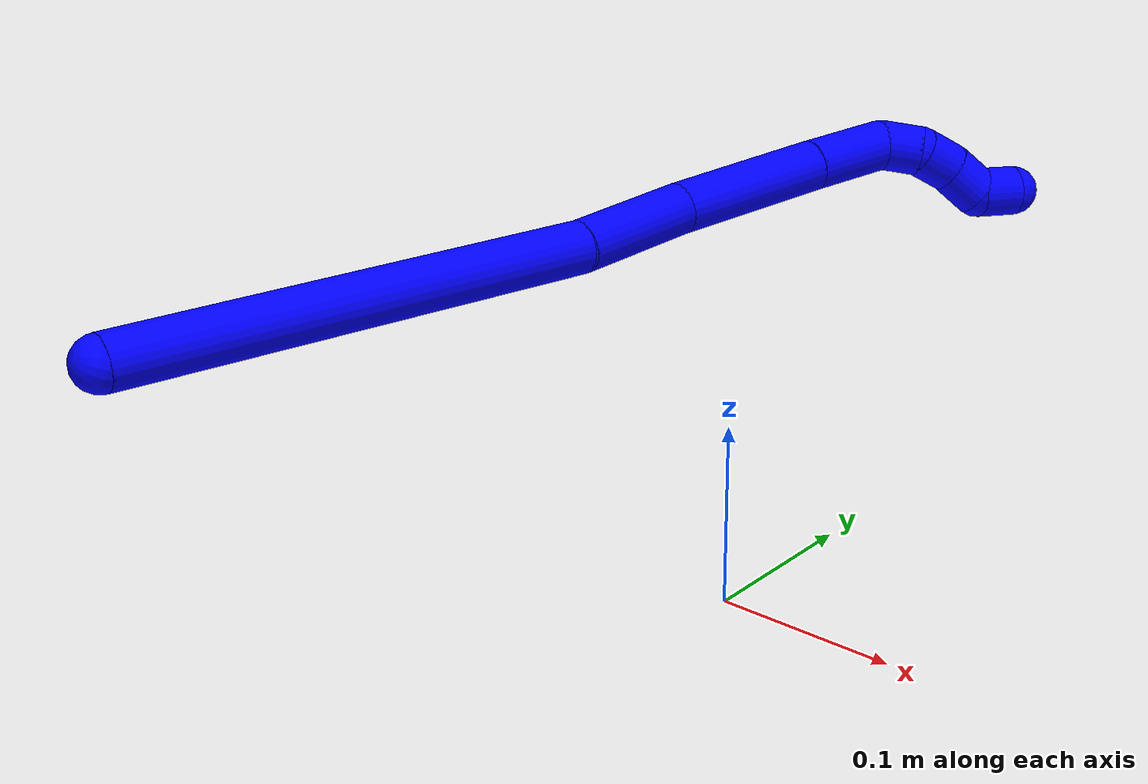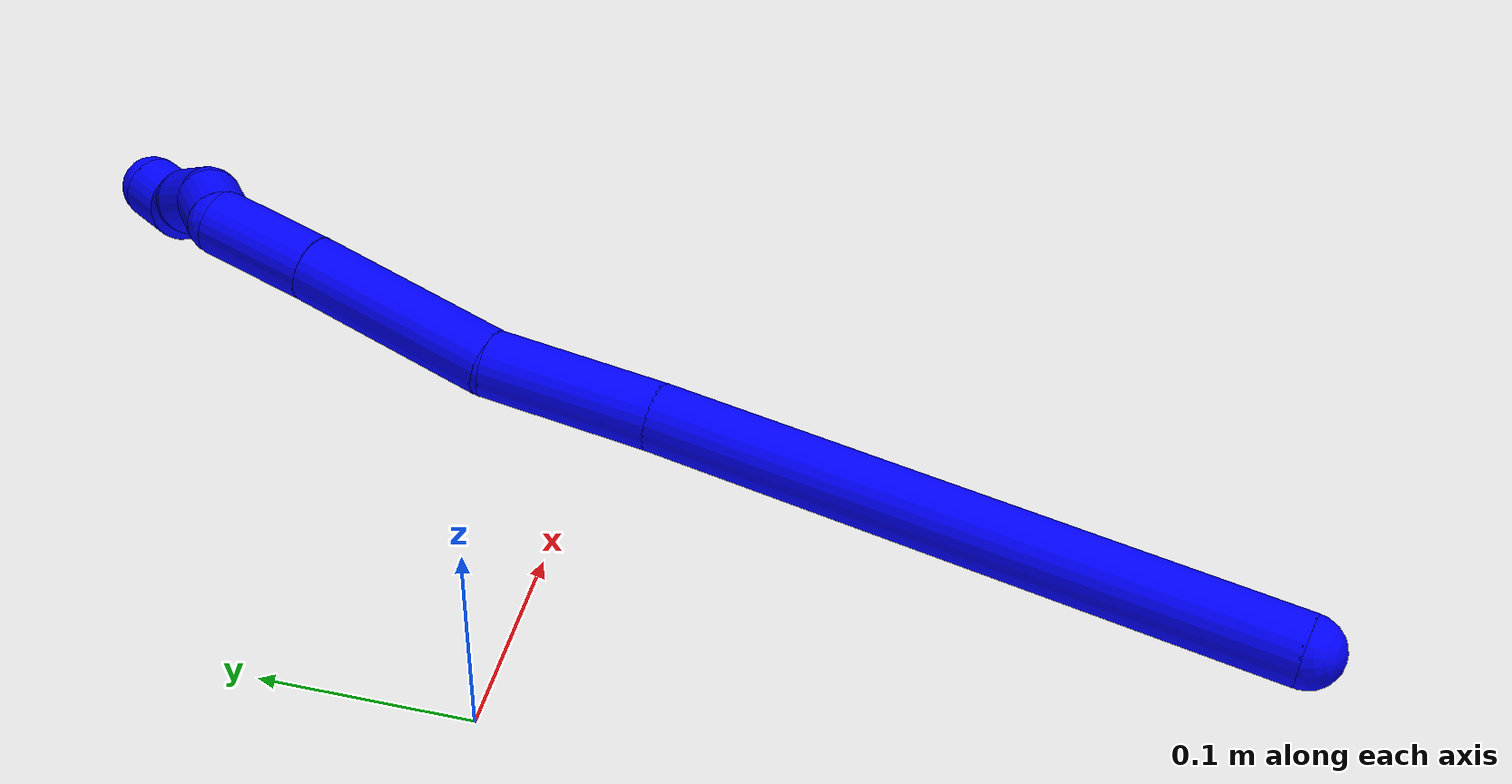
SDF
<sdf version="1.7">
 <world name="default">
  <plugin name="TubeGeneratorPlugin" filename="libtube_generator_plugin.so"/>
  <model name="photoneo_s_sensor">
   <static>1</static>
   <pose>0 0 2 1.57079 1.57079 3.14159</pose>
   <link name="link">
    <inertial><mass>0.1</mass></inertial>
    <sensor name="sensor" type="depth">
     <update_rate>30</update_rate>
     <camera>
      <horizontal_fov>1.22</horizontal_fov>
      <image><width>1920</width><height>1200</height><format>B8G8R8</format></image>
      <clip><near>0.1</near><far>4</far></clip>
      <depth_camera><output>points</output></depth_camera>
     </camera>
     <plugin name="camera_plugin" filename="libgazebo_ros_depth_camera.so">
      <baseline>0.2</baseline>
      <alwaysOn>1</alwaysOn>
      <updateRate>0.0</updateRate>
      <cameraName>camera_ir</cameraName>
      <imageTopicName>/camera/color/image_raw</imageTopicName>
      <cameraInfoTopicName>/camera/color/camera_info</cameraInfoTopicName>
      <depthImageTopicName>/camera/depth/image_raw</depthImageTopicName>
      <depthImageCameraInfoTopicName>/camera/depth/camera_info</depthImageCameraInfoTopicName>
      <pointCloudTopicName>/camera/depth/points</pointCloudTopicName>
      <frameName>fr_optical</frameName>
      <pointCloudCutoff>0.1</pointCloudCutoff>
      <pointCloudCutoffMax>2.0</pointCloudCutoffMax>
      <distortionK1>0</distortionK1>
      <distortionK2>0</distortionK2>
      <distortionK3>0</distortionK3>
      <distortionT1>0</distortionT1>
      <distortionT2>0</distortionT2>
      <CxPrime>0</CxPrime>
      <Cx>0</Cx>
      <Cy>0</Cy>
      <focalLength>0</focalLength>
      <hackBaseline>0</hackBaseline>
     </plugin>
    </sensor>
   </link>
  </model>
  <gravity>0 0 -9.8</gravity>
  <magnetic_field>6e-06 2.3e-05 -4.2e-05</magnetic_field>
  <atmosphere type="adiabatic"/>
  <physics name="default_physics" default="0" type="ode">
   <max_step_size>0.003</max_step_size>
   <real_time_factor>1</real_time_factor>
   <real_time_update_rate>1000</real_time_update_rate>
   <max_contacts>10000</max_contacts>
   <ode>
    <solver>
     <type>quick</type>
     <iters>100</iters>
     <sor>1.3</sor>
     <use_dynamic_moi_rescaling>0</use_dynamic_moi_rescaling>
    </solver>
    <constraints>
     <contact_max_correcting_vel>0</contact_max_correcting_vel>
     <contact_surface_layer>0.001</contact_surface_layer>
     <cfm>0</cfm>
     <erp>0.2</erp>
    </constraints>
   </ode>
  </physics>
  <scene><ambient>0.4 0.4 0.4 1</ambient><background>0.7 0.7 0.7 1</background><shadows>0</shadows></scene>
  <audio><device>default</device></audio>
  <spherical_coordinates>
   <surface_model>EARTH_WGS84</surface_model>
   <latitude_deg>0</latitude_deg>
   <longitude_deg>0</longitude_deg>
   <elevation>0</elevation>
   <heading_deg>0</heading_deg>
  </spherical_coordinates>
  <model name="bin">
   <static>1</static>
   <link name="bottom">
    <collision name="collision-bottom">
     <pose>0 0 -0.01 0 -0 0</pose>
     <geometry><box><size>0.8 0.6 0.02</size></box></geometry>
     <surface>
      <friction><ode><mu>100</mu><mu2>100</mu2></ode></friction>
      <contact><collide_bitmask>65535</collide_bitmask></contact>
     </surface>
    </collision>
   </link>
   <link name="west_wall">
    <collision name="collision-west_wall">
     <pose>-0.41 0 0.1 0 -0 0</pose>
     <geometry><box><size>0.02 0.6 0.2</size></box></geometry>
     <surface>
      <friction><ode><mu>100</mu><mu2>100</mu2></ode></friction>
      <contact><collide_bitmask>65535</collide_bitmask></contact>
     </surface>
    </collision>
   </link>
   <link name="east_wall">
    <collision name="collision-east_wall">
     <pose>0.41 0 0.1 0 -0 0</pose>
     <geometry><box><size>0.02 0.6 0.2</size></box></geometry>
     <surface>
      <friction><ode><mu>100</mu><mu2>100</mu2></ode></friction>
      <contact><collide_bitmask>65535</collide_bitmask></contact>
     </surface>
    </collision>
   </link>
   <link name="south_wall">
    <collision name="collision-south_wall">
     <pose>0 -0.31 0.1 0 -0 0</pose>
     <geometry><box><size>0.8 0.02 0.2</size></box></geometry>
     <surface>
      <friction><ode><mu>100</mu><mu2>100</mu2></ode></friction>
      <contact><collide_bitmask>65535</collide_bitmask></contact>
     </surface>
    </collision>
   </link>
   <link name="north_wall">
    <collision name="collision-north_wall">
     <pose>0 0.31 0.1 0 -0 0</pose>
     <geometry><box><size>0.8 0.02 0.2</size></box></geometry>
     <surface>
      <friction><ode><mu>100</mu><mu2>100</mu2></ode></friction>
      <contact><collide_bitmask>65535</collide_bitmask></contact>
     </surface>
    </collision>
   </link>
  </model>
  <model name="1">
   <static>0</static>
   <link name="1">
    <collision name="collision-cylinder-e_1_1_4">
     <pose>0.000885 0.047016 -0.105515 -2.72241 0.007662 -0.036018</pose>
     <geometry><cylinder><radius>0.0125</radius><length>0.23104</length></cylinder></geometry>
     <surface>
      <friction><ode><mu>1.16</mu><mu2>1.16</mu2><slip1>0</slip1><slip2>0</slip2></ode></friction>
      <contact><ode><kp>1e+06</kp><kd>1</kd><max_vel>0</max_vel><min_depth>0.001</min_depth></ode></contact>
     </surface>
    </collision>
    <visual name="visual-cylinder-e_1_1_4">
     <pose>0.000885 0.047016 -0.105515 -2.72241 0.007662 -0.036018</pose>
     <geometry><cylinder><radius>0.0125</radius><length>0.23104</length></cylinder></geometry>
     <material><ambient>0 0 1 1</ambient></material>
    </visual>
    <collision name="collision-cylinder-e_2_4_5">
     <pose>-0.000439 0.11004 -0.23864 -2.61617 -0.069124 0.255733</pose>
     <geometry><cylinder><radius>0.0125</radius><length>0.063981</length></cylinder></geometry>
     <surface>
      <friction><ode><mu>1.16</mu><mu2>1.16</mu2><slip1>0</slip1><slip2>0</slip2></ode></friction>
      <contact><ode><kp>1e+06</kp><kd>1</kd><max_vel>0</max_vel><min_depth>0.001</min_depth></ode></contact>
     </surface>
    </collision>
    <visual name="visual-cylinder-e_2_4_5">
     <pose>-0.000439 0.11004 -0.23864 -2.61617 -0.069124 0.255733</pose>
     <geometry><cylinder><radius>0.0125</radius><length>0.063981</length></cylinder></geometry>
     <material><ambient>0 0 1 1</ambient></material>
    </visual>
    <collision name="collision-cylinder-e_3_5_6">
     <pose>0.00227 0.144667 -0.301214 -2.65228 0.123537 -0.485679</pose>
     <geometry><cylinder><radius>0.0125</radius><length>0.079836</length></cylinder></geometry>
     <surface>
      <friction><ode><mu>1.16</mu><mu2>1.16</mu2><slip1>0</slip1><slip2>0</slip2></ode></friction>
      <contact><ode><kp>1e+06</kp><kd>1</kd><max_vel>0</max_vel><min_depth>0.001</min_depth></ode></contact>
     </surface>
    </collision>
    <visual name="visual-cylinder-e_3_5_6">
     <pose>0.00227 0.144667 -0.301214 -2.65228 0.123537 -0.485679</pose>
     <geometry><cylinder><radius>0.0125</radius><length>0.079836</length></cylinder></geometry>
     <material><ambient>0 0 1 1</ambient></material>
    </visual>
    <collision name="collision-cylinder-e_4_6_7">
     <pose>0.009504 0.173257 -0.355881 -2.67306 0.104487 -0.431407</pose>
     <geometry><cylinder><radius>0.0125</radius><length>0.044403</length></cylinder></geometry>
     <surface>
      <friction><ode><mu>1.16</mu><mu2>1.16</mu2><slip1>0</slip1><slip2>0</slip2></ode></friction>
      <contact><ode><kp>1e+06</kp><kd>1</kd><max_vel>0</max_vel><min_depth>0.001</min_depth></ode></contact>
     </surface>
    </collision>
    <visual name="visual-cylinder-e_4_6_7">
     <pose>0.009504 0.173257 -0.355881 -2.67306 0.104487 -0.431407</pose>
     <geometry><cylinder><radius>0.0125</radius><length>0.044403</length></cylinder></geometry>
     <material><ambient>0 0 1 1</ambient></material>
    </visual>
    <collision name="collision-cylinder-e_5_7_8">
     <pose>0.017199 0.182752 -0.384065 3.08546 0.564351 2.94852</pose>
     <geometry><cylinder><radius>0.0125</radius><length>0.020112</length></cylinder></geometry>
     <surface>
      <friction><ode><mu>1.16</mu><mu2>1.16</mu2><slip1>0</slip1><slip2>0</slip2></ode></friction>
      <contact><ode><kp>1e+06</kp><kd>1</kd><max_vel>0</max_vel><min_depth>0.001</min_depth></ode></contact>
     </surface>
    </collision>
    <visual name="visual-cylinder-e_5_7_8">
     <pose>0.017199 0.182752 -0.384065 3.08546 0.564351 2.94852</pose>
     <geometry><cylinder><radius>0.0125</radius><length>0.020112</length></cylinder></geometry>
     <material><ambient>0 0 1 1</ambient></material>
    </visual>
    <collision name="collision-cylinder-e_6_8_9">
     <pose>0.023417 0.180183 -0.402374 2.93178 0.083394 0.754503</pose>
     <geometry><cylinder><radius>0.0125</radius><length>0.020162</length></cylinder></geometry>
     <surface>
      <friction><ode><mu>1.16</mu><mu2>1.16</mu2><slip1>0</slip1><slip2>0</slip2></ode></friction>
      <contact><ode><kp>1e+06</kp><kd>1</kd><max_vel>0</max_vel><min_depth>0.001</min_depth></ode></contact>
     </surface>
    </collision>
    <visual name="visual-cylinder-e_6_8_9">
     <pose>0.023417 0.180183 -0.402374 2.93178 0.083394 0.754503</pose>
     <geometry><cylinder><radius>0.0125</radius><length>0.020162</length></cylinder></geometry>
     <material><ambient>0 0 1 1</ambient></material>
    </visual>
    <collision name="collision-cylinder-e_7_9_10">
     <pose>0.025817 0.173352 -0.421086 2.65179 0.153699 0.597751</pose>
     <geometry><cylinder><radius>0.0125</radius><length>0.020382</length></cylinder></geometry>
     <surface>
      <friction><ode><mu>1.16</mu><mu2>1.16</mu2><slip1>0</slip1><slip2>0</slip2></ode></friction>
      <contact><ode><kp>1e+06</kp><kd>1</kd><max_vel>0</max_vel><min_depth>0.001</min_depth></ode></contact>
     </surface>
    </collision>
    <visual name="visual-cylinder-e_7_9_10">
     <pose>0.025817 0.173352 -0.421086 2.65179 0.153699 0.597751</pose>
     <geometry><cylinder><radius>0.0125</radius><length>0.020382</length></cylinder></geometry>
     <material><ambient>0 0 1 1</ambient></material>
    </visual>
    <collision name="collision-cylinder-e_8_10_2">
     <pose>0.030428 0.170956 -0.439249 -2.89428 0.308693 -1.79349</pose>
     <geometry><cylinder><radius>0.0125</radius><length>0.020084</length></cylinder></geometry>
     <surface>
      <friction><ode><mu>1.16</mu><mu2>1.16</mu2><slip1>0</slip1><slip2>0</slip2></ode></friction>
      <contact><ode><kp>1e+06</kp><kd>1</kd><max_vel>0</max_vel><min_depth>0.001</min_depth></ode></contact>
     </surface>
    </collision>
    <visual name="visual-cylinder-e_8_10_2">
     <pose>0.030428 0.170956 -0.439249 -2.89428 0.308693 -1.79349</pose>
     <geometry><cylinder><radius>0.0125</radius><length>0.020084</length></cylinder></geometry>
     <material><ambient>0 0 1 1</ambient></material>
    </visual>
    <collision name="collision-sphere-2">
     <pose>0.033479 0.173299 -0.448526 0 -0 0</pose>
     <geometry><sphere><radius>0.0125</radius></sphere></geometry>
     <surface>
      <friction><ode><mu>1.16</mu><mu2>1.16</mu2><slip1>0</slip1><slip2>0</slip2></ode></friction>
      <contact><ode><kp>1e+06</kp><kd>1</kd><max_vel>0</max_vel><min_depth>0.001</min_depth></ode></contact>
     </surface>
    </collision>
    <visual name="visual-sphere-2">
     <pose>0.033479 0.173299 -0.448526 0 -0 0</pose>
     <geometry><sphere><radius>0.0125</radius></sphere></geometry>
     <material><ambient>0 0 1 1</ambient></material>
    </visual>
    <collision name="collision-sphere-10">
     <pose>0.027377 0.168614 -0.429973 0 -0 0</pose>
     <geometry><sphere><radius>0.0125</radius></sphere></geometry>
     <surface>
      <friction><ode><mu>1.16</mu><mu2>1.16</mu2><slip1>0</slip1><slip2>0</slip2></ode></friction>
      <contact><ode><kp>1e+06</kp><kd>1</kd><max_vel>0</max_vel><min_depth>0.001</min_depth></ode></contact>
     </surface>
    </collision>
    <visual name="visual-sphere-10">
     <pose>0.027377 0.168614 -0.429973 0 -0 0</pose>
     <geometry><sphere><radius>0.0125</radius></sphere></geometry>
     <material><ambient>0 0 1 1</ambient></material>
    </visual>
    <collision name="collision-sphere-9">
     <pose>0.024257 0.17809 -0.412199 0 -0 0</pose>
     <geometry><sphere><radius>0.0125</radius></sphere></geometry>
     <surface>
      <friction><ode><mu>1.16</mu><mu2>1.16</mu2><slip1>0</slip1><slip2>0</slip2></ode></friction>
      <contact><ode><kp>1e+06</kp><kd>1</kd><max_vel>0</max_vel><min_depth>0.001</min_depth></ode></contact>
     </surface>
    </collision>
    <visual name="visual-sphere-9">
     <pose>0.024257 0.17809 -0.412199 0 -0 0</pose>
     <geometry><sphere><radius>0.0125</radius></sphere></geometry>
     <material><ambient>0 0 1 1</ambient></material>
    </visual>
    <collision name="collision-sphere-4">
     <pose>0.00177 0.094033 -0.211031 0 -0 0</pose>
     <geometry><sphere><radius>0.0125</radius></sphere></geometry>
     <surface>
      <friction><ode><mu>1.16</mu><mu2>1.16</mu2><slip1>0</slip1><slip2>0</slip2></ode></friction>
      <contact><ode><kp>1e+06</kp><kd>1</kd><max_vel>0</max_vel><min_depth>0.001</min_depth></ode></contact>
     </surface>
    </collision>
    <visual name="visual-sphere-4">
     <pose>0.00177 0.094033 -0.211031 0 -0 0</pose>
     <geometry><sphere><radius>0.0125</radius></sphere></geometry>
     <material><ambient>0 0 1 1</ambient></material>
    </visual>
    <collision name="collision-sphere-1">
     <geometry><sphere><radius>0.0125</radius></sphere></geometry>
     <surface>
      <friction><ode><mu>1.16</mu><mu2>1.16</mu2><slip1>0</slip1><slip2>0</slip2></ode></friction>
      <contact><ode><kp>1e+06</kp><kd>1</kd><max_vel>0</max_vel><min_depth>0.001</min_depth></ode></contact>
     </surface>
    </collision>
    <visual name="visual-sphere-1">
     <geometry><sphere><radius>0.0125</radius></sphere></geometry>
     <material><ambient>0 0 1 1</ambient></material>
    </visual>
    <collision name="collision-sphere-8">
     <pose>0.022577 0.182275 -0.392548 0 -0 0</pose>
     <geometry><sphere><radius>0.0125</radius></sphere></geometry>
     <surface>
      <friction><ode><mu>1.16</mu><mu2>1.16</mu2><slip1>0</slip1><slip2>0</slip2></ode></friction>
      <contact><ode><kp>1e+06</kp><kd>1</kd><max_vel>0</max_vel><min_depth>0.001</min_depth></ode></contact>
     </surface>
    </collision>
    <visual name="visual-sphere-8">
     <pose>0.022577 0.182275 -0.392548 0 -0 0</pose>
     <geometry><sphere><radius>0.0125</radius></sphere></geometry>
     <material><ambient>0 0 1 1</ambient></material>
    </visual>
    <collision name="collision-sphere-5">
     <pose>-0.002649 0.126048 -0.266249 0 -0 0</pose>
     <geometry><sphere><radius>0.0125</radius></sphere></geometry>
     <surface>
      <friction><ode><mu>1.16</mu><mu2>1.16</mu2><slip1>0</slip1><slip2>0</slip2></ode></friction>
      <contact><ode><kp>1e+06</kp><kd>1</kd><max_vel>0</max_vel><min_depth>0.001</min_depth></ode></contact>
     </surface>
    </collision>
    <visual name="visual-sphere-5">
     <pose>-0.002649 0.126048 -0.266249 0 -0 0</pose>
     <geometry><sphere><radius>0.0125</radius></sphere></geometry>
     <material><ambient>0 0 1 1</ambient></material>
    </visual>
    <collision name="collision-sphere-6">
     <pose>0.007189 0.163286 -0.33618 0 -0 0</pose>
     <geometry><sphere><radius>0.0125</radius></sphere></geometry>
     <surface>
      <friction><ode><mu>1.16</mu><mu2>1.16</mu2><slip1>0</slip1><slip2>0</slip2></ode></friction>
      <contact><ode><kp>1e+06</kp><kd>1</kd><max_vel>0</max_vel><min_depth>0.001</min_depth></ode></contact>
     </surface>
    </collision>
    <visual name="visual-sphere-6">
     <pose>0.007189 0.163286 -0.33618 0 -0 0</pose>
     <geometry><sphere><radius>0.0125</radius></sphere></geometry>
     <material><ambient>0 0 1 1</ambient></material>
    </visual>
    <collision name="collision-sphere-7">
     <pose>0.01182 0.183228 -0.375581 0 -0 0</pose>
     <geometry><sphere><radius>0.0125</radius></sphere></geometry>
     <surface>
      <friction><ode><mu>1.16</mu><mu2>1.16</mu2><slip1>0</slip1><slip2>0</slip2></ode></friction>
      <contact><ode><kp>1e+06</kp><kd>1</kd><max_vel>0</max_vel><min_depth>0.001</min_depth></ode></contact>
     </surface>
    </collision>
    <visual name="visual-sphere-7">
     <pose>0.01182 0.183228 -0.375581 0 -0 0</pose>
     <geometry><sphere><radius>0.0125</radius></sphere></geometry>
     <material><ambient>0 0 1 1</ambient></material>
    </visual>
    <inertial>
     <pose>0.00547 0.102842 -0.225476 0 -0 0</pose>
     <mass>0.5</mass>
     <inertia>
      <ixx>0.001056</ixx>
      <ixy>0</ixy>
      <ixz>0</ixz>
      <iyy>-0.00105</iyy>
      <iyz>0</iyz>
      <izz>-0.000508</izz>
     </inertia>
    </inertial>
   </link>
   <pose>-0.077839 -0.311541 0.212392 1.15529 -0.398135 -0.231876</pose>
  </model>
 </world>
</sdf>
